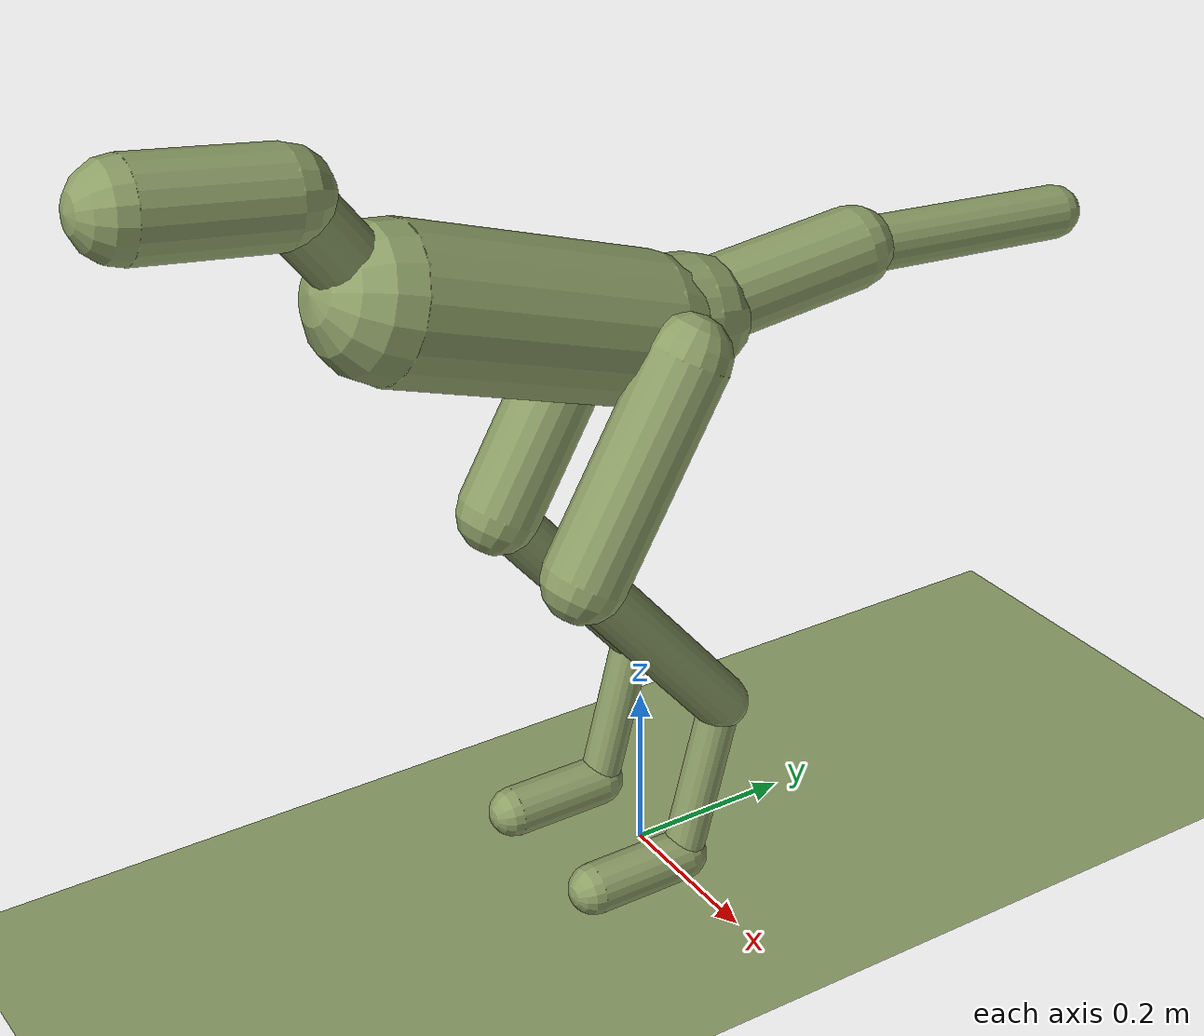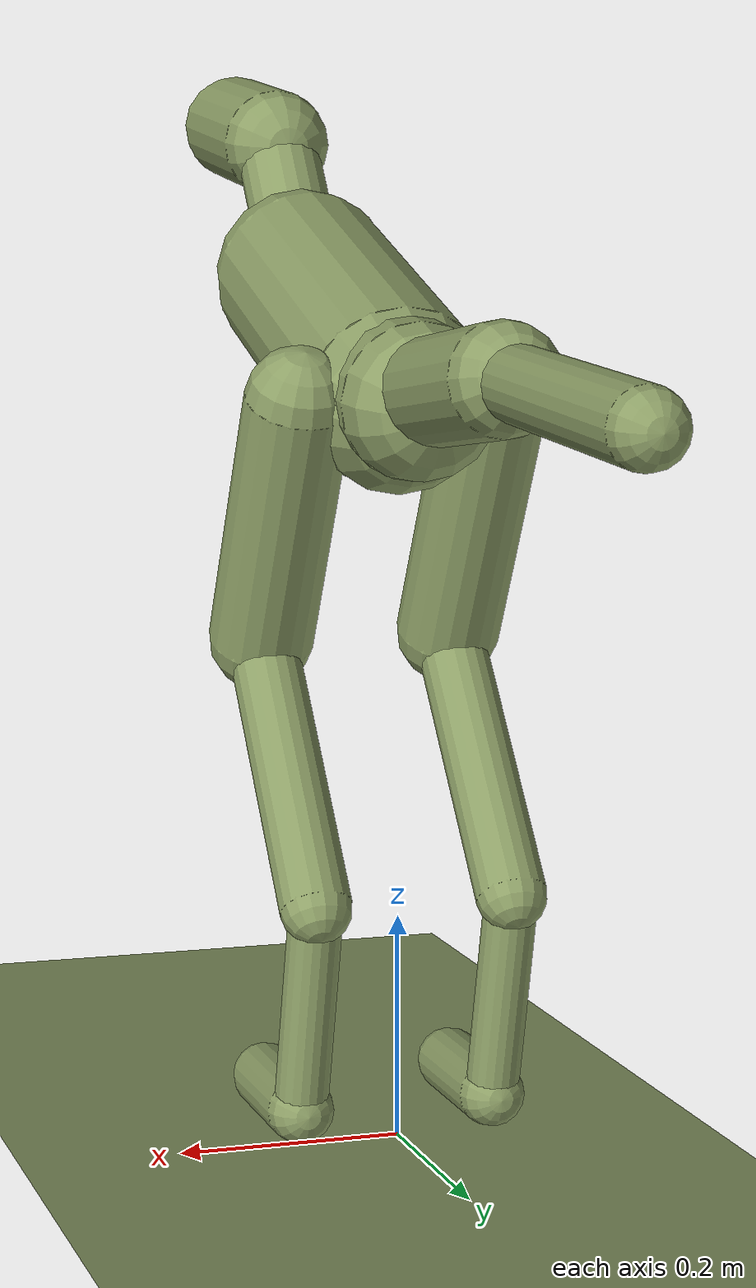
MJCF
<?xml version="1.0" ?>
<mujoco model="raptor">
  <compiler angle="degree" autolimits="true"/>
  <option timestep="0.005" iterations="20" solver="Newton" integrator="implicitfast"/>
  <default>
    <geom type="capsule" condim="3" friction="1.0 0.05 0.05" rgba="0.55 0.62 0.40 1" density="0"/>
    <joint type="hinge" damping="2" stiffness="0" armature="0.02" limited="true"/>
    <position ctrllimited="true" dampratio="1"/>
  </default>
  <asset>
    <texture name="grid" type="2d" builtin="checker" rgb1="0.24 0.26 0.28" rgb2="0.20 0.22 0.24" width="512" height="512"/>
    <material name="grid" texture="grid" texrepeat="8 8" reflectance="0.05"/>
  </asset>
  <worldbody>
    <light pos="0 0 4" dir="0 0 -1" directional="true"/>
    <geom name="floor" type="plane" size="20 20 0.1" material="grid" condim="3" friction="1.0 0.05 0.05"/>
    <body name="Rap_Pelvis" pos="0.00000 0.00000 0.66284">
      <freejoint name="Rap_root"/>
      <geom name="Rap_g_Pelvis" fromto="0.00000 0.06000 0.00000 0.00000 -0.10000 0.02000" size="0.0700" mass="4.0000"/>
      <body name="Rap_Torso" pos="0.00000 0.00000 0.00000">
        <geom name="Rap_g_Torso" fromto="0.00000 0.00000 0.00000 0.00000 -0.30000 0.10000" size="0.0850" mass="6.0000"/>
        <joint name="Rap_Torso_pitch" axis="1 0 0" range="-25 25"/>
        <joint name="Rap_Torso_yaw" axis="0 0 1" range="-30 30"/>
        <body name="Rap_Neck" pos="0.00000 -0.30000 0.10000">
          <geom name="Rap_g_Neck" fromto="0.00000 0.00000 0.00000 0.00000 -0.10000 0.13000" size="0.0400" mass="0.8000"/>
          <joint name="Rap_Neck_pitch" axis="1 0 0" range="-40 30"/>
          <joint name="Rap_Neck_yaw" axis="0 0 1" range="-45 45"/>
          <body name="Rap_Head" pos="0.00000 -0.10000 0.13000">
            <geom name="Rap_g_Head" fromto="0.00000 0.00000 0.00000 0.00000 -0.16000 0.02000" size="0.0520" mass="1.0000"/>
            <joint name="Rap_Head_pitch" axis="1 0 0" range="-30 30"/>
          </body>
        </body>
      </body>
      <body name="Rap_Tail01" pos="0.00000 0.00000 0.00000">
        <geom name="Rap_g_Tail01" fromto="0.00000 0.00000 0.00000 0.00000 0.28000 0.03000" size="0.0480" mass="1.6000"/>
        <joint name="Rap_Tail01_pitch" axis="1 0 0" range="-35 35"/>
        <joint name="Rap_Tail01_yaw" axis="0 0 1" range="-40 40"/>
        <body name="Rap_Tail02" pos="0.00000 0.28000 0.03000">
          <geom name="Rap_g_Tail02" fromto="0.00000 0.00000 0.00000 0.00000 0.30000 -0.02000" size="0.0320" mass="1.0000"/>
          <joint name="Rap_Tail02_pitch" axis="1 0 0" range="-35 35"/>
          <joint name="Rap_Tail02_yaw" axis="0 0 1" range="-40 40"/>
        </body>
      </body>
      <body name="Rap_ThighL" pos="0.09000 0.00000 0.00000">
        <geom name="Rap_g_ThighL" fromto="0.00000 0.00000 0.00000 0.00000 -0.13000 -0.22517" size="0.0480" mass="1.6000"/>
        <joint name="Rap_ThighL_pitch" axis="1 0 0" range="-60 35"/>
        <joint name="Rap_ThighL_roll" axis="0 1 0" range="-20 20"/>
        <joint name="Rap_ThighL_yaw" axis="0 0 1" range="-20 20"/>
        <body name="Rap_ShinL" pos="0.00000 -0.13000 -0.22517">
          <geom name="Rap_g_ShinL" fromto="0.00000 0.00000 0.00000 0.00000 0.17998 -0.21449" size="0.0320" mass="0.8000"/>
          <joint name="Rap_ShinL_pitch" axis="1 0 0" range="-10 70"/>
          <body name="Rap_MetaL" pos="0.00000 0.17998 -0.21449">
            <geom name="Rap_g_MetaL" fromto="0.00000 0.00000 0.00000 0.00000 -0.05176 -0.19319" size="0.0240" mass="0.3000"/>
            <joint name="Rap_MetaL_pitch" axis="1 0 0" range="-55 35"/>
            <body name="Rap_FootL" pos="0.00000 -0.05176 -0.19319">
              <geom name="Rap_g_FootL" fromto="0.00000 0.00000 0.00000 0.00000 -0.12000 0.00000" size="0.0300" mass="0.1000"/>
              <joint name="Rap_FootL_pitch" axis="1 0 0" range="-30 45"/>
            </body>
          </body>
        </body>
      </body>
      <body name="Rap_ThighR" pos="-0.09000 0.00000 0.00000">
        <geom name="Rap_g_ThighR" fromto="0.00000 0.00000 0.00000 0.00000 -0.13000 -0.22517" size="0.0480" mass="1.6000"/>
        <joint name="Rap_ThighR_pitch" axis="1 0 0" range="-60 35"/>
        <joint name="Rap_ThighR_roll" axis="0 1 0" range="-20 20"/>
        <joint name="Rap_ThighR_yaw" axis="0 0 1" range="-20 20"/>
        <body name="Rap_ShinR" pos="0.00000 -0.13000 -0.22517">
          <geom name="Rap_g_ShinR" fromto="0.00000 0.00000 0.00000 0.00000 0.17998 -0.21449" size="0.0320" mass="0.8000"/>
          <joint name="Rap_ShinR_pitch" axis="1 0 0" range="-10 70"/>
          <body name="Rap_MetaR" pos="0.00000 0.17998 -0.21449">
            <geom name="Rap_g_MetaR" fromto="0.00000 0.00000 0.00000 0.00000 -0.05176 -0.19319" size="0.0240" mass="0.3000"/>
            <joint name="Rap_MetaR_pitch" axis="1 0 0" range="-55 35"/>
            <body name="Rap_FootR" pos="0.00000 -0.05176 -0.19319">
              <geom name="Rap_g_FootR" fromto="0.00000 0.00000 0.00000 0.00000 -0.12000 0.00000" size="0.0300" mass="0.1000"/>
              <joint name="Rap_FootR_pitch" axis="1 0 0" range="-30 45"/>
            </body>
          </body>
        </body>
      </body>
    </body>
  </worldbody>
  <actuator>
    <position name="Rap_Torso_pitch" joint="Rap_Torso_pitch" kp="60" ctrlrange="-0.436332 0.436332"/>
    <position name="Rap_Torso_yaw" joint="Rap_Torso_yaw" kp="60" ctrlrange="-0.523599 0.523599"/>
    <position name="Rap_Neck_pitch" joint="Rap_Neck_pitch" kp="12" ctrlrange="-0.698132 0.523599"/>
    <position name="Rap_Neck_yaw" joint="Rap_Neck_yaw" kp="12" ctrlrange="-0.785398 0.785398"/>
    <position name="Rap_Head_pitch" joint="Rap_Head_pitch" kp="6" ctrlrange="-0.523599 0.523599"/>
    <position name="Rap_Tail01_pitch" joint="Rap_Tail01_pitch" kp="20" ctrlrange="-0.610865 0.610865"/>
    <position name="Rap_Tail01_yaw" joint="Rap_Tail01_yaw" kp="20" ctrlrange="-0.698132 0.698132"/>
    <position name="Rap_Tail02_pitch" joint="Rap_Tail02_pitch" kp="12" ctrlrange="-0.610865 0.610865"/>
    <position name="Rap_Tail02_yaw" joint="Rap_Tail02_yaw" kp="12" ctrlrange="-0.698132 0.698132"/>
    <position name="Rap_ThighL_pitch" joint="Rap_ThighL_pitch" kp="55" ctrlrange="-1.047198 0.610865"/>
    <position name="Rap_ThighL_roll" joint="Rap_ThighL_roll" kp="55" ctrlrange="-0.349066 0.349066"/>
    <position name="Rap_ThighL_yaw" joint="Rap_ThighL_yaw" kp="55" ctrlrange="-0.349066 0.349066"/>
    <position name="Rap_ShinL_pitch" joint="Rap_ShinL_pitch" kp="45" ctrlrange="-0.174533 1.221730"/>
    <position name="Rap_MetaL_pitch" joint="Rap_MetaL_pitch" kp="35" ctrlrange="-0.959931 0.610865"/>
    <position name="Rap_FootL_pitch" joint="Rap_FootL_pitch" kp="15" ctrlrange="-0.523599 0.785398"/>
    <position name="Rap_ThighR_pitch" joint="Rap_ThighR_pitch" kp="55" ctrlrange="-1.047198 0.610865"/>
    <position name="Rap_ThighR_roll" joint="Rap_ThighR_roll" kp="55" ctrlrange="-0.349066 0.349066"/>
    <position name="Rap_ThighR_yaw" joint="Rap_ThighR_yaw" kp="55" ctrlrange="-0.349066 0.349066"/>
    <position name="Rap_ShinR_pitch" joint="Rap_ShinR_pitch" kp="45" ctrlrange="-0.174533 1.221730"/>
    <position name="Rap_MetaR_pitch" joint="Rap_MetaR_pitch" kp="35" ctrlrange="-0.959931 0.610865"/>
    <position name="Rap_FootR_pitch" joint="Rap_FootR_pitch" kp="15" ctrlrange="-0.523599 0.785398"/>
  </actuator>
</mujoco>
